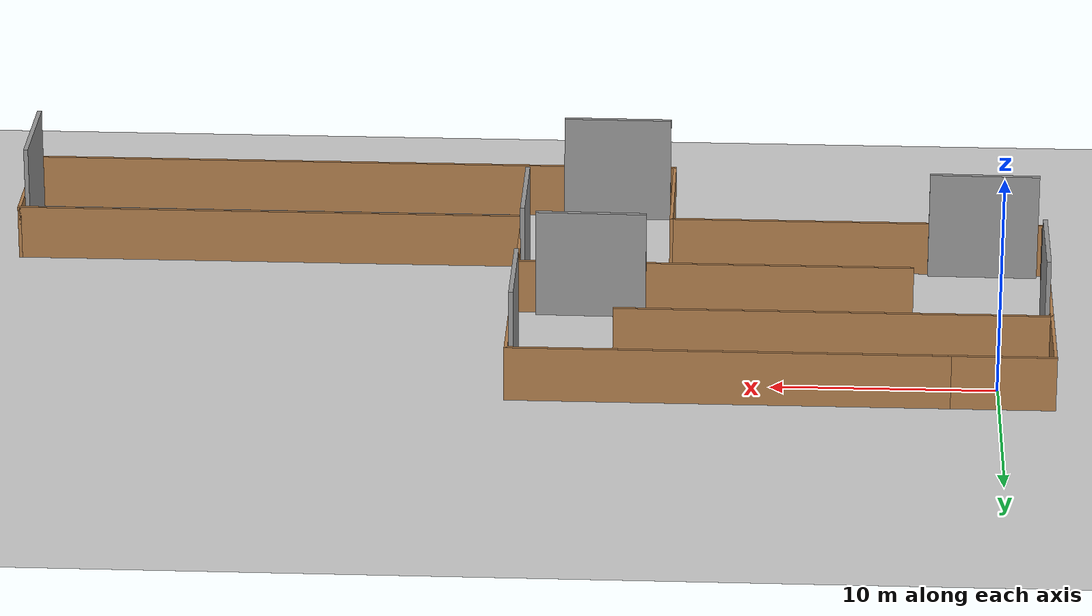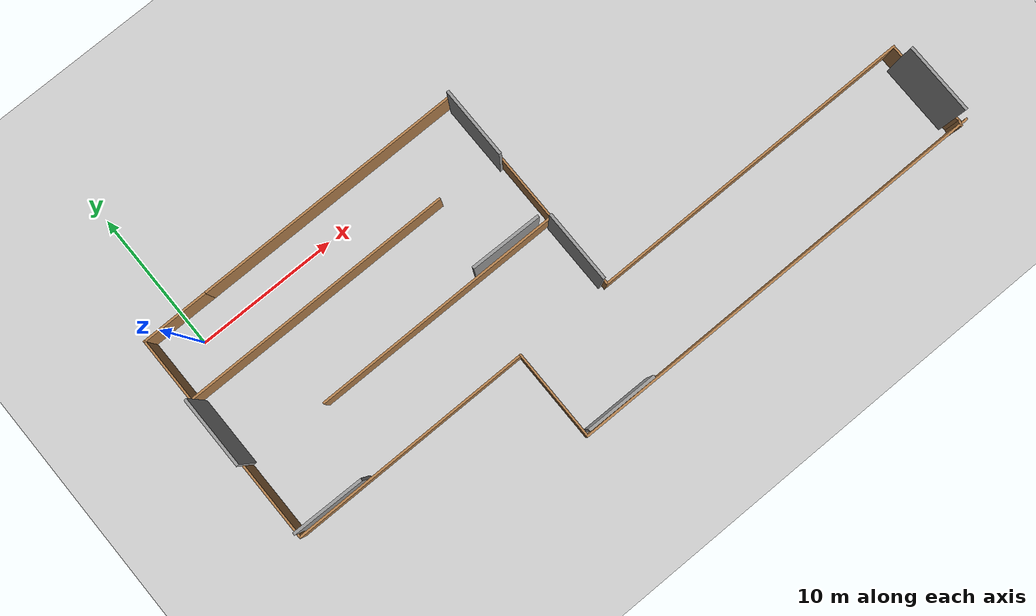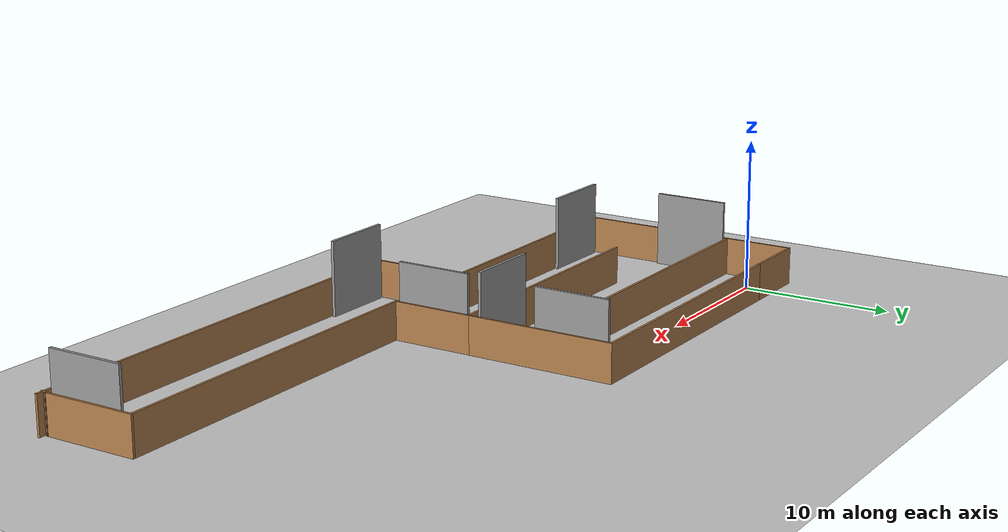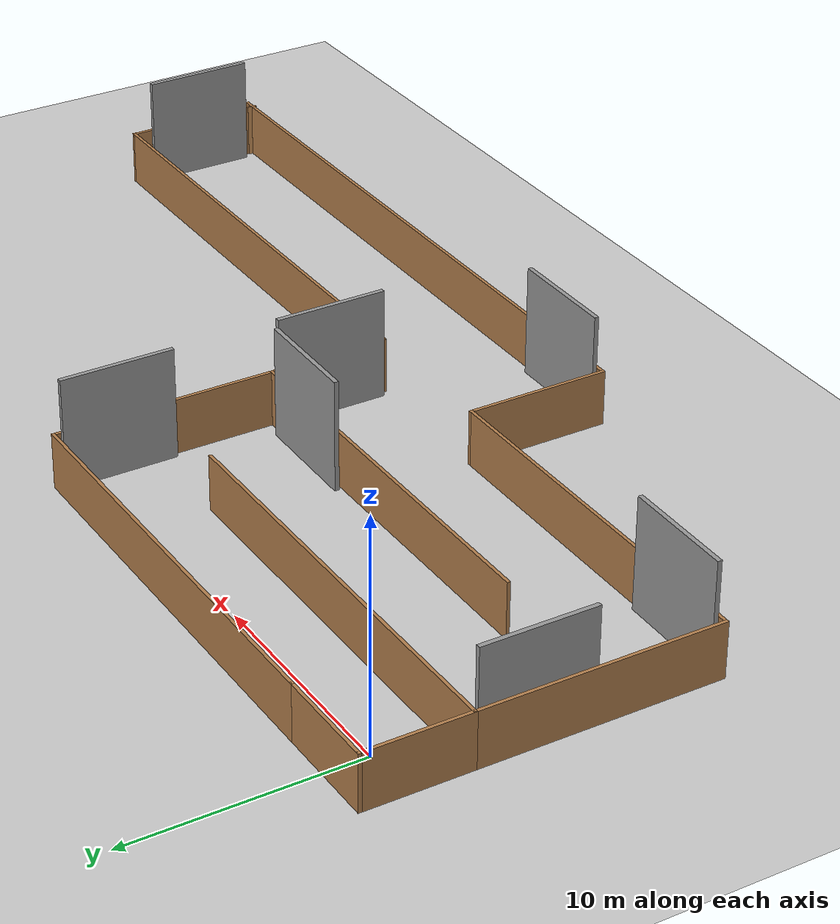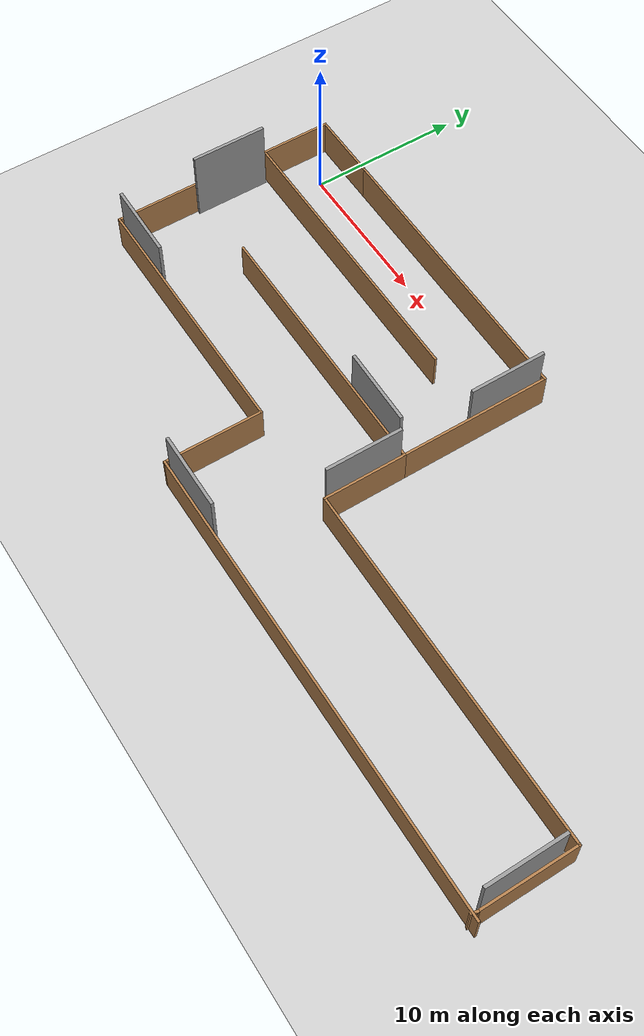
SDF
<sdf version="1.7">
 <world name="default">
  <light name="sun" type="directional">
   <pose>0 0 10 0 -0 0</pose>
   <diffuse>0.8 0.8 0.8 1</diffuse>
   <specular>0.2 0.2 0.2 1</specular>
   <attenuation>
    <range>1000</range>
    <constant>0.9</constant>
    <linear>0.01</linear>
    <quadratic>0.001</quadratic>
   </attenuation>
   <direction>-0.5 0.1 -0.9</direction>
   <spot><inner_angle>0</inner_angle><outer_angle>0</outer_angle><falloff>0</falloff></spot>
  </light>
  <model name="ground_plane">
   <static>1</static>
   <link name="link">
    <collision name="collision">
     <geometry><plane><normal>0 0 1</normal><size>100 100</size></plane></geometry>
     <surface><friction><ode><mu>100</mu><mu2>50</mu2></ode></friction></surface>
    </collision>
    <visual name="visual">
     <cast_shadows>0</cast_shadows>
     <geometry><plane><normal>0 0 1</normal><size>100 100</size></plane></geometry>
     <material>
      <script><uri>file://media/materials/scripts/gazebo.material</uri><name>Gazebo/Grey</name></script>
     </material>
    </visual>
   </link>
  </model>
  <gravity>0 0 -9.8</gravity>
  <magnetic_field>6e-06 2.3e-05 -4.2e-05</magnetic_field>
  <atmosphere type="adiabatic"/>
  <physics type="ode">
   <max_step_size>0.001</max_step_size>
   <real_time_factor>1</real_time_factor>
   <real_time_update_rate>1000</real_time_update_rate>
  </physics>
  <scene><ambient>0.4 0.4 0.4 1</ambient><background>0.7 0.7 0.7 1</background><shadows>1</shadows></scene>
  <audio><device>default</device></audio>
  <spherical_coordinates>
   <surface_model>EARTH_WGS84</surface_model>
   <latitude_deg>0</latitude_deg>
   <longitude_deg>0</longitude_deg>
   <elevation>0</elevation>
   <heading_deg>0</heading_deg>
  </spherical_coordinates>
  <model name="wall1">
   <pose>21.4529 -8.95446 0 0 -0 0</pose>
   <link name="Wall_1">
    <collision name="Wall_1_Collision">
     <geometry><box><size>19.5 0.15 2.5</size></box></geometry>
     <pose>0 0 1.25 0 -0 0</pose>
    </collision>
    <visual name="Wall_1_Visual">
     <pose>0 0 1.25 0 -0 0</pose>
     <geometry><box><size>19.5 0.15 2.5</size></box></geometry>
     <material>
      <script><uri>file://media/materials/scripts/gazebo.material</uri><name>Gazebo/Wood</name></script>
      <ambient>1 1 1 1</ambient>
     </material>
     <meta><layer>0</layer></meta>
    </visual>
    <pose>-9.575 10.8275 0 0 -0 0</pose>
   </link>
   <link name="Wall_10">
    <collision name="Wall_10_Collision">
     <geometry><box><size>19.5 0.15 2.5</size></box></geometry>
     <pose>0 0 1.25 0 -0 0</pose>
    </collision>
    <visual name="Wall_10_Visual">
     <pose>0 0 1.25 0 -0 0</pose>
     <geometry><box><size>19.5 0.15 2.5</size></box></geometry>
     <material>
      <script><uri>file://media/materials/scripts/gazebo.material</uri><name>Gazebo/Wood</name></script>
      <ambient>1 1 1 1</ambient>
     </material>
     <meta><layer>0</layer></meta>
    </visual>
    <pose>-14.175 6.22746 0 0 -0 0</pose>
   </link>
   <link name="Wall_12">
    <collision name="Wall_12_Collision">
     <geometry><box><size>10.75 0.15 2.5</size></box></geometry>
     <pose>0 0 1.25 0 -0 0</pose>
    </collision>
    <visual name="Wall_12_Visual">
     <pose>0 0 1.25 0 -0 0</pose>
     <geometry><box><size>10.75 0.15 2.5</size></box></geometry>
     <material>
      <script><uri>file://media/materials/scripts/gazebo.material</uri><name>Gazebo/Wood</name></script>
      <ambient>1 1 1 1</ambient>
     </material>
     <meta><layer>0</layer></meta>
    </visual>
    <pose>-23.85 0.927465 0 0 -0 -1.5708</pose>
   </link>
   <link name="Wall_15">
    <collision name="Wall_15_Collision">
     <geometry><box><size>17.25 0.15 2.5</size></box></geometry>
     <pose>0 0 1.25 0 -0 0</pose>
    </collision>
    <visual name="Wall_15_Visual">
     <pose>0 0 1.25 0 -0 0</pose>
     <geometry><box><size>17.25 0.15 2.5</size></box></geometry>
     <material>
      <script><uri>file://media/materials/scripts/gazebo.material</uri><name>Gazebo/Wood</name></script>
      <ambient>1 1 1 1</ambient>
     </material>
     <meta><layer>0</layer></meta>
    </visual>
    <pose>-15.3 -4.37254 0 0 -0 0</pose>
   </link>
   <link name="Wall_16">
    <collision name="Wall_16_Collision">
     <geometry><box><size>6.5 0.15 2.5</size></box></geometry>
     <pose>0 0 1.25 0 -0 0</pose>
    </collision>
    <visual name="Wall_16_Visual">
     <pose>0 0 1.25 0 -0 0</pose>
     <geometry><box><size>6.5 0.15 2.5</size></box></geometry>
     <material>
      <script><uri>file://media/materials/scripts/gazebo.material</uri><name>Gazebo/Wood</name></script>
      <ambient>1 1 1 1</ambient>
     </material>
     <meta><layer>0</layer></meta>
    </visual>
    <pose>-6.75 -7.54753 0 0 -0 -1.5708</pose>
   </link>
   <link name="Wall_17">
    <collision name="Wall_17_Collision">
     <geometry><box><size>30.75 0.15 2.5</size></box></geometry>
     <pose>0 0 1.25 0 -0 0</pose>
    </collision>
    <visual name="Wall_17_Visual">
     <pose>0 0 1.25 0 -0 0</pose>
     <geometry><box><size>30.75 0.15 2.5</size></box></geometry>
     <material>
      <script><uri>file://media/materials/scripts/gazebo.material</uri><name>Gazebo/Wood</name></script>
      <ambient>1 1 1 1</ambient>
     </material>
     <meta><layer>0</layer></meta>
    </visual>
    <pose>8.55 -10.7225 0 0 -0 0</pose>
   </link>
   <link name="Wall_19">
    <collision name="Wall_19_Collision">
     <geometry><box><size>5.5 0.15 2.5</size></box></geometry>
     <pose>0 0 1.25 0 -0 0</pose>
    </collision>
    <visual name="Wall_19_Visual">
     <pose>0 0 1.25 0 -0 0</pose>
     <geometry><box><size>5.5 0.15 2.5</size></box></geometry>
     <material>
      <script><uri>file://media/materials/scripts/gazebo.material</uri><name>Gazebo/Wood</name></script>
      <ambient>1 1 1 1</ambient>
     </material>
     <meta><layer>0</layer></meta>
    </visual>
    <pose>0.1 -1.69754 0 0 -0 -1.5708</pose>
   </link>
   <link name="Wall_20">
    <collision name="Wall_20_Collision">
     <geometry><box><size>23.5 0.15 2.5</size></box></geometry>
     <pose>0 0 1.25 0 -0 0</pose>
    </collision>
    <visual name="Wall_20_Visual">
     <pose>0 0 1.25 0 -0 0</pose>
     <geometry><box><size>23.5 0.15 2.5</size></box></geometry>
     <material>
      <script><uri>file://media/materials/scripts/gazebo.material</uri><name>Gazebo/Wood</name></script>
      <ambient>1 1 1 1</ambient>
     </material>
     <meta><layer>0</layer></meta>
    </visual>
    <pose>11.775 -4.37254 0 0 -0 0</pose>
   </link>
   <link name="Wall_21">
    <collision name="Wall_21_Collision">
     <geometry><box><size>6.25 0.15 2.5</size></box></geometry>
     <pose>0 0 1.25 0 -0 0</pose>
    </collision>
    <visual name="Wall_21_Visual">
     <pose>0 0 1.25 0 -0 0</pose>
     <geometry><box><size>6.25 0.15 2.5</size></box></geometry>
     <material>
      <script><uri>file://media/materials/scripts/gazebo.material</uri><name>Gazebo/Wood</name></script>
      <ambient>1 1 1 1</ambient>
     </material>
     <meta><layer>0</layer></meta>
    </visual>
    <pose>23.45 -7.42253 0 0 -0 -1.5708</pose>
   </link>
   <link name="Wall_22">
    <collision name="Wall_22_Collision">
     <geometry><box><size>0.5 0.15 2.5</size></box></geometry>
     <pose>0 0 1.25 0 -0 0</pose>
    </collision>
    <visual name="Wall_22_Visual">
     <pose>0 0 1.25 0 -0 0</pose>
     <geometry><box><size>0.5 0.15 2.5</size></box></geometry>
     <material>
      <script><uri>file://media/materials/scripts/gazebo.material</uri><name>Gazebo/Wood</name></script>
      <ambient>1 1 1 1</ambient>
     </material>
     <meta><layer>0</layer></meta>
    </visual>
    <pose>23.4047 -10.6416 0 0 -0 -1.8326</pose>
   </link>
   <link name="Wall_4">
    <collision name="Wall_4_Collision">
     <geometry><box><size>10 0.15 2.5</size></box></geometry>
     <pose>0 0 1.25 0 -0 0</pose>
    </collision>
    <visual name="Wall_4_Visual">
     <pose>0 0 1.25 0 -0 0</pose>
     <geometry><box><size>10 0.15 2.5</size></box></geometry>
     <material>
      <script><uri>file://media/materials/scripts/gazebo.material</uri><name>Gazebo/Wood</name></script>
      <ambient>1 1 1 1</ambient>
     </material>
     <meta><layer>0</layer></meta>
    </visual>
    <pose>0.1 5.90247 0 0 -0 -1.5708</pose>
   </link>
   <link name="Wall_5">
    <collision name="Wall_5_Collision">
     <geometry><box><size>18 0.15 2.5</size></box></geometry>
     <pose>0 0 1.25 0 -0 0</pose>
    </collision>
    <visual name="Wall_5_Visual">
     <pose>0 0 1.25 0 -0 0</pose>
     <geometry><box><size>18 0.15 2.5</size></box></geometry>
     <material>
      <script><uri>file://media/materials/scripts/gazebo.material</uri><name>Gazebo/Wood</name></script>
      <ambient>1 1 1 1</ambient>
     </material>
     <meta><layer>0</layer></meta>
    </visual>
    <pose>-8.825 0.977465 0 0 -0 3.14159</pose>
   </link>
   <link name="Wall_8">
    <collision name="Wall_8_Collision">
     <geometry><box><size>4.75 0.15 2.5</size></box></geometry>
     <pose>0 0 1.25 0 -0 0</pose>
    </collision>
    <visual name="Wall_8_Visual">
     <pose>0 0 1.25 0 -0 0</pose>
     <geometry><box><size>4.75 0.15 2.5</size></box></geometry>
     <material>
      <script><uri>file://media/materials/scripts/gazebo.material</uri><name>Gazebo/Wood</name></script>
      <ambient>1 1 1 1</ambient>
     </material>
     <meta><layer>0</layer></meta>
    </visual>
    <pose>-21.55 10.8275 0 0 -0 3.14159</pose>
   </link>
   <link name="Wall_9">
    <collision name="Wall_9_Collision">
     <geometry><box><size>4.75 0.15 2.5</size></box></geometry>
     <pose>0 0 1.25 0 -0 0</pose>
    </collision>
    <visual name="Wall_9_Visual">
     <pose>0 0 1.25 0 -0 0</pose>
     <geometry><box><size>4.75 0.15 2.5</size></box></geometry>
     <material>
      <script><uri>file://media/materials/scripts/gazebo.material</uri><name>Gazebo/Wood</name></script>
      <ambient>1 1 1 1</ambient>
     </material>
     <meta><layer>0</layer></meta>
    </visual>
    <pose>-23.85 8.52746 0 0 -0 -1.5708</pose>
   </link>
   <static>1</static>
  </model>
  <model name="background">
   <link name="link">
    <inertial>
     <mass>1</mass>
     <inertia>
      <ixx>0.166667</ixx>
      <ixy>0</ixy>
      <ixz>0</ixz>
      <iyy>0.166667</iyy>
      <iyz>0</iyz>
      <izz>0.166667</izz>
     </inertia>
    </inertial>
    <visual name="visual">
     <geometry><box><size>0.2 5 5</size></box></geometry>
     <material>
      <script><name>Gazebo/Grey</name><uri>file://media/materials/scripts/gazebo.material</uri></script>
      <shader type="pixel"><normal_map>__default__</normal_map></shader>
      <ambient>0.3 0.3 0.3 1</ambient>
      <diffuse>0.7 0.7 0.7 1</diffuse>
      <specular>0.01 0.01 0.01 1</specular>
      <emissive>1 1 1 1</emissive>
     </material>
     <pose>0 0 2.5 0 -0 0</pose>
    </visual>
    <collision name="collision">
     <pose>0 0 2.5 0 -0 0</pose>
     <geometry><box><size>0.2 5 5</size></box></geometry>
     <surface>
      <friction>
       <ode><mu>1</mu><mu2>1</mu2><fdir1>0 0 0</fdir1><slip1>0</slip1><slip2>0</slip2></ode>
       <torsional>
        <coefficient>1</coefficient>
        <patch_radius>0</patch_radius>
        <surface_radius>0</surface_radius>
        <use_patch_radius>1</use_patch_radius>
        <ode><slip>0</slip></ode>
       </torsional>
      </friction>
      <bounce><restitution_coefficient>0</restitution_coefficient><threshold>1e+06</threshold></bounce>
      <contact>
       <collide_without_contact>0</collide_without_contact>
       <collide_without_contact_bitmask>1</collide_without_contact_bitmask>
       <collide_bitmask>1</collide_bitmask>
       <ode>
        <soft_cfm>0</soft_cfm>
        <soft_erp>0.2</soft_erp>
        <kp>1e+13</kp>
        <kd>1</kd>
        <max_vel>0.01</max_vel>
        <min_depth>0</min_depth>
       </ode>
       <bullet>
        <split_impulse>1</split_impulse>
        <split_impulse_penetration_threshold>-0.01</split_impulse_penetration_threshold>
        <soft_cfm>0</soft_cfm>
        <soft_erp>0.2</soft_erp>
        <kp>1e+13</kp>
        <kd>1</kd>
       </bullet>
      </contact>
     </surface>
    </collision>
   </link>
   <static>0</static>
   <pose>21.3391 -0.898479 -2e-06 2e-06 -2.1e-05 -0</pose>
  </model>
  <model name="background_clone">
   <link name="link">
    <inertial>
     <mass>1</mass>
     <inertia>
      <ixx>0.166667</ixx>
      <ixy>0</ixy>
      <ixz>0</ixz>
      <iyy>0.166667</iyy>
      <iyz>0</iyz>
      <izz>0.166667</izz>
     </inertia>
    </inertial>
    <visual name="visual">
     <geometry><box><size>0.2 5 5</size></box></geometry>
     <material>
      <script><name>Gazebo/Grey</name><uri>file://media/materials/scripts/gazebo.material</uri></script>
      <shader type="pixel"><normal_map>__default__</normal_map></shader>
      <ambient>0.3 0.3 0.3 1</ambient>
      <diffuse>0.7 0.7 0.7 1</diffuse>
      <specular>0.01 0.01 0.01 1</specular>
      <emissive>1 1 1 1</emissive>
     </material>
     <pose>0 0 2.5 0 -0 0</pose>
    </visual>
    <collision name="collision">
     <pose>0 0 2.5 0 -0 0</pose>
     <geometry><box><size>0.2 5 5</size></box></geometry>
     <surface>
      <friction>
       <ode><mu>1</mu><mu2>1</mu2><fdir1>0 0 0</fdir1><slip1>0</slip1><slip2>0</slip2></ode>
       <torsional>
        <coefficient>1</coefficient>
        <patch_radius>0</patch_radius>
        <surface_radius>0</surface_radius>
        <use_patch_radius>1</use_patch_radius>
        <ode><slip>0</slip></ode>
       </torsional>
      </friction>
      <bounce><restitution_coefficient>0</restitution_coefficient><threshold>1e+06</threshold></bounce>
      <contact>
       <collide_without_contact>0</collide_without_contact>
       <collide_without_contact_bitmask>1</collide_without_contact_bitmask>
       <collide_bitmask>1</collide_bitmask>
       <ode>
        <soft_cfm>0</soft_cfm>
        <soft_erp>0.2</soft_erp>
        <kp>1e+13</kp>
        <kd>1</kd>
        <max_vel>0.01</max_vel>
        <min_depth>0</min_depth>
       </ode>
       <bullet>
        <split_impulse>1</split_impulse>
        <split_impulse_penetration_threshold>-0.01</split_impulse_penetration_threshold>
        <soft_cfm>0</soft_cfm>
        <soft_erp>0.2</soft_erp>
        <kp>1e+13</kp>
        <kd>1</kd>
       </bullet>
      </contact>
     </surface>
    </collision>
   </link>
   <static>0</static>
   <pose>18.2035 -7.70266 -2e-06 2e-06 2.1e-05 -1.58381</pose>
  </model>
  <model name="background_clone_clone">
   <link name="link">
    <inertial>
     <mass>1</mass>
     <inertia>
      <ixx>0.166667</ixx>
      <ixy>0</ixy>
      <ixz>0</ixz>
      <iyy>0.166667</iyy>
      <iyz>0</iyz>
      <izz>0.166667</izz>
     </inertia>
    </inertial>
    <visual name="visual">
     <geometry><box><size>0.2 5 5</size></box></geometry>
     <material>
      <script><name>Gazebo/Grey</name><uri>file://media/materials/scripts/gazebo.material</uri></script>
      <shader type="pixel"><normal_map>__default__</normal_map></shader>
      <ambient>0.3 0.3 0.3 1</ambient>
      <diffuse>0.7 0.7 0.7 1</diffuse>
      <specular>0.01 0.01 0.01 1</specular>
      <emissive>1 1 1 1</emissive>
     </material>
     <pose>0 0 2.5 0 -0 0</pose>
    </visual>
    <collision name="collision">
     <pose>0 0 2.5 0 -0 0</pose>
     <geometry><box><size>0.2 5 5</size></box></geometry>
     <surface>
      <friction>
       <ode><mu>1</mu><mu2>1</mu2><fdir1>0 0 0</fdir1><slip1>0</slip1><slip2>0</slip2></ode>
       <torsional>
        <coefficient>1</coefficient>
        <patch_radius>0</patch_radius>
        <surface_radius>0</surface_radius>
        <use_patch_radius>1</use_patch_radius>
        <ode><slip>0</slip></ode>
       </torsional>
      </friction>
      <bounce><restitution_coefficient>0</restitution_coefficient><threshold>1e+06</threshold></bounce>
      <contact>
       <collide_without_contact>0</collide_without_contact>
       <collide_without_contact_bitmask>1</collide_without_contact_bitmask>
       <collide_bitmask>1</collide_bitmask>
       <ode>
        <soft_cfm>0</soft_cfm>
        <soft_erp>0.2</soft_erp>
        <kp>1e+13</kp>
        <kd>1</kd>
        <max_vel>0.01</max_vel>
        <min_depth>0</min_depth>
       </ode>
       <bullet>
        <split_impulse>1</split_impulse>
        <split_impulse_penetration_threshold>-0.01</split_impulse_penetration_threshold>
        <soft_cfm>0</soft_cfm>
        <soft_erp>0.2</soft_erp>
        <kp>1e+13</kp>
        <kd>1</kd>
       </bullet>
      </contact>
     </surface>
    </collision>
   </link>
   <static>0</static>
   <pose>17.3831 -19.4034 -2e-06 2e-06 2.1e-05 -1.57565</pose>
  </model>
  <model name="background_clone_0">
   <link name="link">
    <inertial>
     <mass>1</mass>
     <inertia>
      <ixx>0.166667</ixx>
      <ixy>0</ixy>
      <ixz>0</ixz>
      <iyy>0.166667</iyy>
      <iyz>0</iyz>
      <izz>0.166667</izz>
     </inertia>
    </inertial>
    <visual name="visual">
     <geometry><box><size>0.2 5 5</size></box></geometry>
     <material>
      <script><name>Gazebo/Grey</name><uri>file://media/materials/scripts/gazebo.material</uri></script>
      <shader type="pixel"><normal_map>__default__</normal_map></shader>
      <ambient>0.3 0.3 0.3 1</ambient>
      <diffuse>0.7 0.7 0.7 1</diffuse>
      <specular>0.01 0.01 0.01 1</specular>
      <emissive>1 1 1 1</emissive>
     </material>
     <pose>0 0 2.5 0 -0 0</pose>
    </visual>
    <collision name="collision">
     <pose>0 0 2.5 0 -0 0</pose>
     <geometry><box><size>0.2 5 5</size></box></geometry>
     <surface>
      <friction>
       <ode><mu>1</mu><mu2>1</mu2><fdir1>0 0 0</fdir1><slip1>0</slip1><slip2>0</slip2></ode>
       <torsional>
        <coefficient>1</coefficient>
        <patch_radius>0</patch_radius>
        <surface_radius>0</surface_radius>
        <use_patch_radius>1</use_patch_radius>
        <ode><slip>0</slip></ode>
       </torsional>
      </friction>
      <bounce><restitution_coefficient>0</restitution_coefficient><threshold>1e+06</threshold></bounce>
      <contact>
       <collide_without_contact>0</collide_without_contact>
       <collide_without_contact_bitmask>1</collide_without_contact_bitmask>
       <collide_bitmask>1</collide_bitmask>
       <ode>
        <soft_cfm>0</soft_cfm>
        <soft_erp>0.2</soft_erp>
        <kp>1e+13</kp>
        <kd>1</kd>
        <max_vel>0.01</max_vel>
        <min_depth>0</min_depth>
       </ode>
       <bullet>
        <split_impulse>1</split_impulse>
        <split_impulse_penetration_threshold>-0.01</split_impulse_penetration_threshold>
        <soft_cfm>0</soft_cfm>
        <soft_erp>0.2</soft_erp>
        <kp>1e+13</kp>
        <kd>1</kd>
       </bullet>
      </contact>
     </surface>
    </collision>
   </link>
   <static>0</static>
   <pose>21.3126 -10.6193 -2e-06 2e-06 -2.1e-05 -0</pose>
  </model>
  <model name="background_clone_0_clone">
   <link name="link">
    <inertial>
     <mass>1</mass>
     <inertia>
      <ixx>0.166667</ixx>
      <ixy>0</ixy>
      <ixz>0</ixz>
      <iyy>0.166667</iyy>
      <iyz>0</iyz>
      <izz>0.166667</izz>
     </inertia>
    </inertial>
    <visual name="visual">
     <geometry><box><size>0.2 5 5</size></box></geometry>
     <material>
      <script><name>Gazebo/Grey</name><uri>file://media/materials/scripts/gazebo.material</uri></script>
      <shader type="pixel"><normal_map>__default__</normal_map></shader>
      <ambient>0.3 0.3 0.3 1</ambient>
      <diffuse>0.7 0.7 0.7 1</diffuse>
      <specular>0.01 0.01 0.01 1</specular>
      <emissive>1 1 1 1</emissive>
     </material>
     <pose>0 0 2.5 0 -0 0</pose>
    </visual>
    <collision name="collision">
     <pose>0 0 2.5 0 -0 0</pose>
     <geometry><box><size>0.2 5 5</size></box></geometry>
     <surface>
      <friction>
       <ode><mu>1</mu><mu2>1</mu2><fdir1>0 0 0</fdir1><slip1>0</slip1><slip2>0</slip2></ode>
       <torsional>
        <coefficient>1</coefficient>
        <patch_radius>0</patch_radius>
        <surface_radius>0</surface_radius>
        <use_patch_radius>1</use_patch_radius>
        <ode><slip>0</slip></ode>
       </torsional>
      </friction>
      <bounce><restitution_coefficient>0</restitution_coefficient><threshold>1e+06</threshold></bounce>
      <contact>
       <collide_without_contact>0</collide_without_contact>
       <collide_without_contact_bitmask>1</collide_without_contact_bitmask>
       <collide_bitmask>1</collide_bitmask>
       <ode>
        <soft_cfm>0</soft_cfm>
        <soft_erp>0.2</soft_erp>
        <kp>1e+13</kp>
        <kd>1</kd>
        <max_vel>0.01</max_vel>
        <min_depth>0</min_depth>
       </ode>
       <bullet>
        <split_impulse>1</split_impulse>
        <split_impulse_penetration_threshold>-0.01</split_impulse_penetration_threshold>
        <soft_cfm>0</soft_cfm>
        <soft_erp>0.2</soft_erp>
        <kp>1e+13</kp>
        <kd>1</kd>
       </bullet>
      </contact>
     </surface>
    </collision>
   </link>
   <static>0</static>
   <pose>-2.1868 -5.41662 -2e-06 2e-06 -2.1e-05 -0</pose>
  </model>
  <model name="background_clone_clone_0">
   <link name="link">
    <inertial>
     <mass>1</mass>
     <inertia>
      <ixx>0.166667</ixx>
      <ixy>0</ixy>
      <ixz>0</ixz>
      <iyy>0.166667</iyy>
      <iyz>0</iyz>
      <izz>0.166667</izz>
     </inertia>
    </inertial>
    <visual name="visual">
     <geometry><box><size>0.2 5 5</size></box></geometry>
     <material>
      <script><name>Gazebo/Grey</name><uri>file://media/materials/scripts/gazebo.material</uri></script>
      <shader type="pixel"><normal_map>__default__</normal_map></shader>
      <ambient>0.3 0.3 0.3 1</ambient>
      <diffuse>0.7 0.7 0.7 1</diffuse>
      <specular>0.01 0.01 0.01 1</specular>
      <emissive>1 1 1 1</emissive>
     </material>
     <pose>0 0 2.5 0 -0 0</pose>
    </visual>
    <collision name="collision">
     <pose>0 0 2.5 0 -0 0</pose>
     <geometry><box><size>0.2 5 5</size></box></geometry>
     <surface>
      <friction>
       <ode><mu>1</mu><mu2>1</mu2><fdir1>0 0 0</fdir1><slip1>0</slip1><slip2>0</slip2></ode>
       <torsional>
        <coefficient>1</coefficient>
        <patch_radius>0</patch_radius>
        <surface_radius>0</surface_radius>
        <use_patch_radius>1</use_patch_radius>
        <ode><slip>0</slip></ode>
       </torsional>
      </friction>
      <bounce><restitution_coefficient>0</restitution_coefficient><threshold>1e+06</threshold></bounce>
      <contact>
       <collide_without_contact>0</collide_without_contact>
       <collide_without_contact_bitmask>1</collide_without_contact_bitmask>
       <collide_bitmask>1</collide_bitmask>
       <ode>
        <soft_cfm>0</soft_cfm>
        <soft_erp>0.2</soft_erp>
        <kp>1e+13</kp>
        <kd>1</kd>
        <max_vel>0.01</max_vel>
        <min_depth>0</min_depth>
       </ode>
       <bullet>
        <split_impulse>1</split_impulse>
        <split_impulse_penetration_threshold>-0.01</split_impulse_penetration_threshold>
        <soft_cfm>0</soft_cfm>
        <soft_erp>0.2</soft_erp>
        <kp>1e+13</kp>
        <kd>1</kd>
       </bullet>
      </contact>
     </surface>
    </collision>
   </link>
   <static>0</static>
   <pose>0.369066 -13.095 -2e-06 2e-06 2.1e-05 -1.58381</pose>
  </model>
  <model name="background_clone_0_clone_0">
   <link name="link">
    <inertial>
     <mass>1</mass>
     <inertia>
      <ixx>0.166667</ixx>
      <ixy>0</ixy>
      <ixz>0</ixz>
      <iyy>0.166667</iyy>
      <iyz>0</iyz>
      <izz>0.166667</izz>
     </inertia>
    </inertial>
    <visual name="visual">
     <geometry><box><size>0.2 5 5</size></box></geometry>
     <material>
      <script><name>Gazebo/Grey</name><uri>file://media/materials/scripts/gazebo.material</uri></script>
      <shader type="pixel"><normal_map>__default__</normal_map></shader>
      <ambient>0.3 0.3 0.3 1</ambient>
      <diffuse>0.7 0.7 0.7 1</diffuse>
      <specular>0.01 0.01 0.01 1</specular>
      <emissive>1 1 1 1</emissive>
     </material>
     <pose>0 0 2.5 0 -0 0</pose>
    </visual>
    <collision name="collision">
     <pose>0 0 2.5 0 -0 0</pose>
     <geometry><box><size>0.2 5 5</size></box></geometry>
     <surface>
      <friction>
       <ode><mu>1</mu><mu2>1</mu2><fdir1>0 0 0</fdir1><slip1>0</slip1><slip2>0</slip2></ode>
       <torsional>
        <coefficient>1</coefficient>
        <patch_radius>0</patch_radius>
        <surface_radius>0</surface_radius>
        <use_patch_radius>1</use_patch_radius>
        <ode><slip>0</slip></ode>
       </torsional>
      </friction>
      <bounce><restitution_coefficient>0</restitution_coefficient><threshold>1e+06</threshold></bounce>
      <contact>
       <collide_without_contact>0</collide_without_contact>
       <collide_without_contact_bitmask>1</collide_without_contact_bitmask>
       <collide_bitmask>1</collide_bitmask>
       <ode>
        <soft_cfm>0</soft_cfm>
        <soft_erp>0.2</soft_erp>
        <kp>1e+13</kp>
        <kd>1</kd>
        <max_vel>0.01</max_vel>
        <min_depth>0</min_depth>
       </ode>
       <bullet>
        <split_impulse>1</split_impulse>
        <split_impulse_penetration_threshold>-0.01</split_impulse_penetration_threshold>
        <soft_cfm>0</soft_cfm>
        <soft_erp>0.2</soft_erp>
        <kp>1e+13</kp>
        <kd>1</kd>
       </bullet>
      </contact>
     </surface>
    </collision>
   </link>
   <static>0</static>
   <pose>44.6374 -16.6601 1e-06 1e-06 1.4e-05 0</pose>
  </model>
 </world>
</sdf>
